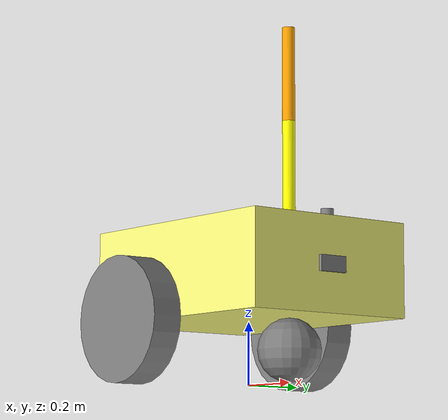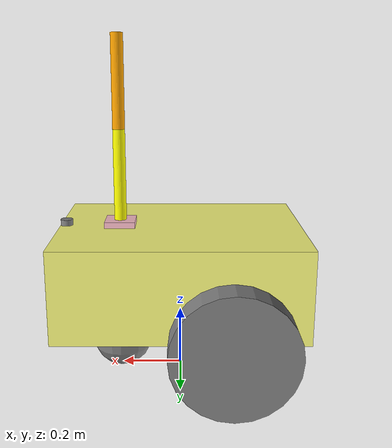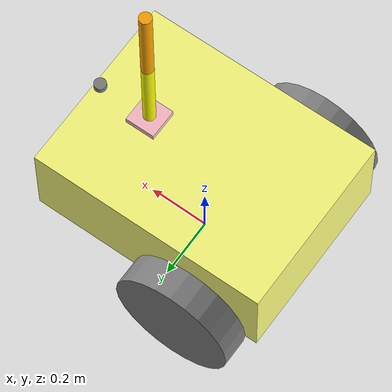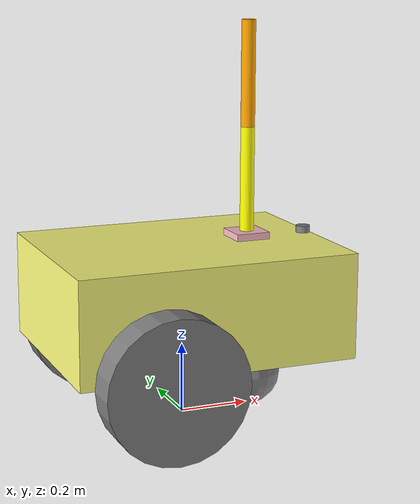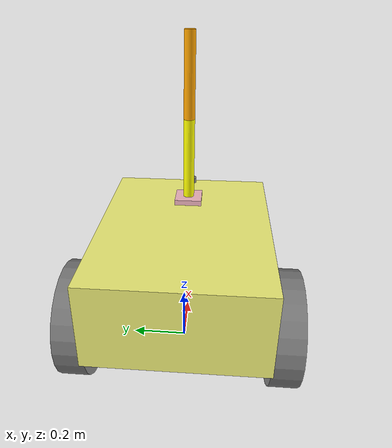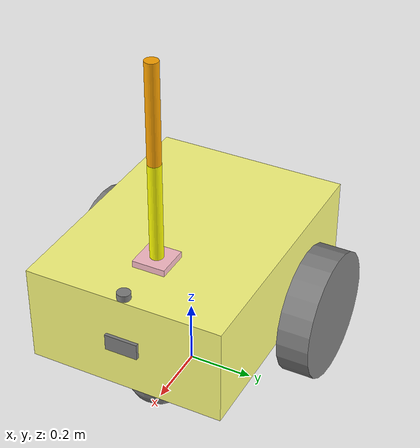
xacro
<?xml version="1.0"?>
<robot name="my_robot" xmlns:xacro="http://www.ros.org/wiki/xacro">

    <xacro:include filename="common_properties.xacro" />

    <xacro:include filename="mobile_base.xacro" />

    <xacro:include filename="arm_mobile_base.xacro" />

    <xacro:include filename="mobile_base_plugin.xacro" />

    <xacro:include filename="camera.xacro" />

    <xacro:include filename="LiDAR.xacro" />

    <joint name="mobile_base_arm_joint" type="fixed">
        <parent link="base_link" />
        <child link="arm_base_link" />
        <origin xyz="${base_length / 4} 0 ${base_height}" rpy="0 0 0" />
    </joint>

    <joint name="laser_joint" type="fixed">
        <parent link="base_link"/>
        <child link="laser_link"/>
        <origin xyz="${base_length / 2} 0 ${base_height}" rpy="0 0 0"/>
    </joint>

</robot>

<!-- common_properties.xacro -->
<robot xmlns:xacro="http://www.ros.org/wiki/xacro">

    <material name="green">
        <color rgba="1 1 0.5 1" />
    </material>

    <material name="grey">
        <color rgba="0.5 0.5 0.5 1" />
    </material>

    <material name="pink">
        <color rgba="1.0 0.753 0.796 1.0" />
    </material>

    <material name="yellow">
        <color rgba="1.0 1.0 0.0 1.0" />
    </material>

    <material name="orange">
        <color rgba="1.0 0.647 0.0 1.0"/>
    </material>

    <xacro:macro name="caster_wheel_inertia" params="m r o_xyz o_rpy">
        <inertial>
            <mass value="${m}" />
            <origin xyz="${o_xyz}" rpy="${o_rpy}" />
            <inertia ixx="${(m * 2 / 5) * (r * r)}" ixy="0" ixz="0"
                      iyy="${(m * 2 / 5) * (r * r)}" iyz="0"
                      izz="${(m * 2 / 5) * (r * r)}" />
        </inertial>
    </xacro:macro>

    <xacro:macro name="cylinder_inertia" params="m r l o_xyz o_rpy">
        <inertial>
            <mass value="${m}" />
            <origin xyz="${o_xyz}" rpy="${o_rpy}" />
            <inertia ixx="${(m/12) * (3 * r * r + l * l)}" ixy="0" ixz="0"
                      iyy="${(m/12) * (3 * r * r + l * l)}" iyz="0"
                      izz="${(m/2) * (r * r)}" />
        </inertial>
    </xacro:macro>

    <xacro:macro name="box_inertia" params="m x y z o_xyz o_rpy">
        <inertial>
            <mass value="${m}" />
            <origin xyz="${o_xyz}" rpy="${o_rpy}" />
            <inertia ixx="${(m/12) * (y * y + z * z)}" ixy="0" ixz="0"
                      iyy="${(m/12) * (x * x + z * z)}" iyz="0"
                      izz="${(m/12) * (y * y + x * x)}" />
        </inertial>
    </xacro:macro>

</robot>

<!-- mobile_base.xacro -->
<robot xmlns:xacro="http://www.ros.org/wiki/xacro">

    <xacro:property name="base_length" value="0.8" />
    <xacro:property name="base_width" value="0.6" />
    <xacro:property name="base_height" value="0.3" />
    <xacro:property name="wheel_length" value="0.1" />
    <xacro:property name="wheel_radius" value="0.2" />

    <link name="base_link">
        <visual>
            <geometry>
                <box size="${base_length} ${base_width} ${base_height}" />
            </geometry>
            <origin xyz="0 0 ${base_height / 2}" rpy="0 0 0" />
            <material name="green" />
        </visual>

        <collision>
            <geometry>
                <box size="$${base_length} ${base_width} ${base_height}" />
            </geometry>
            <origin xyz="0 0 ${base_height / 2}" rpy="0 0 0" />
        </collision>

        <xacro:box_inertia m="5.0" x="${base_length}" y="${base_width}" z="${base_height}"
        o_xyz="0 0 ${base_height / 2}" o_rpy="0 0 0" />
    </link>

    <xacro:macro name="wheel_link" params="prefix">
        <link name="${prefix}_wheel_link">
            <visual>
                <geometry>
                    <cylinder radius="${wheel_radius}" length="${wheel_length}" />
                </geometry>
                <origin xyz="0 0 0" rpy="${pi / 2.0} 0 0" />
                <material name="grey" />
            </visual>

            <collision>
                <geometry>
                    <sphere radius="${wheel_radius}" />
                </geometry>
                <origin xyz="0 0 0" rpy="0 0 0" />
            </collision>

            <xacro:cylinder_inertia m="1.0" r="${wheel_radius}" l="${wheel_length}"
            o_xyz="0 0 0" o_rpy="0 ${pi / 2.0} 0" />
        </link>
    </xacro:macro>

    <xacro:wheel_link prefix="right" />
    <xacro:wheel_link prefix="left" />

    <link name="caster_wheel_link">
        <visual>
            <geometry>
                <sphere radius="${wheel_radius / 2}" />
            </geometry>
            <origin xyz="0 0 0" rpy="0 0 0" />
            <material name="grey" />
        </visual>

        <collision>
            <geometry>
                <sphere radius="${wheel_radius / 2}" />
            </geometry>
            <origin xyz="0 0 0" rpy="0 0 0" />
        </collision>

        <xacro:caster_wheel_inertia m="0.5" r="${wheel_radius / 2}"
        o_xyz="0 0 0" o_rpy="0 0 0" />
    </link>

    <link name="base_footprint" />

    <joint name="base_right_wheel_joint" type="continuous">
        <parent link="base_link" />
        <child link="right_wheel_link" />
        <origin xyz="${-base_length / 5.0} ${base_width / 2 + wheel_length / 2} 0" rpy="0 0 0" />
        <axis xyz="0 1 0" />
    </joint>

    <joint name="base_left_wheel_joint" type="continuous">
        <parent link="base_link" />
        <child link="left_wheel_link" />
        <origin xyz="${-base_length / 5.0} ${-base_width / 2 + -wheel_length / 2} 0" rpy="0 0 0" />
        <axis xyz="0 1 0" />
    </joint>

    <joint name="base_caster_wheel_joint" type="fixed">
        <parent link="base_link" />
        <child link="caster_wheel_link" />
        <origin xyz="${base_length / 4.0} 0 ${-wheel_radius / 2}" rpy="0 0 0" />
    </joint>

    <joint name="base_joint" type="fixed">
        <parent link="base_footprint" />
        <child link="base_link" />
        <origin xyz="0 0 ${wheel_radius}" rpy="0 0 0" />
    </joint>

</robot>

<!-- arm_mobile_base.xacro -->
<robot xmlns:xacro="http://www.ros.org/wiki/xacro">
    <link name="arm_base_link">
        <visual>
            <geometry>
                <box size="0.1 0.1 0.02"/>
            </geometry>
            <origin xyz="0 0 0.01" rpy="0 0 0"/>
            <material name="pink" />
        </visual>

        <collision>
            <geometry>
                <box size="0.1 0.1 0.02"/>
            </geometry>
            <origin xyz="0 0 0.01" rpy="0 0 0"/>
        </collision>

        <xacro:box_inertia m="0.5" x="0.1" y="0.1" z="0.02"
        o_xyz="0 0 0.01" o_rpy="0 0 0" />
    </link>

    <link name="forearm_link">

        <visual>
            <geometry>
                <cylinder radius="0.02" length="0.3"/>
            </geometry>
            <origin xyz="0 0 0.15" rpy="0 0 0"/>
            <material name="yellow"/>
        </visual>

        <collision>
            <geometry>
                <cylinder radius="0.02" length="0.3"/>
            </geometry>
            <origin xyz="0 0 0.15" rpy="0 0 0"/>
        </collision>

        <xacro:cylinder_inertia m="0.3" r="0.02" l="0.3"
        o_xyz="0 0 0.15" o_rpy="0 0 0" />
    </link>

    <link name="hand_link">
        <visual>
            <geometry>
                <cylinder radius="0.02" length="0.3"/>
            </geometry>
            <origin xyz="0 0 0.15" rpy="0 0 0"/>
            <material name="orange"/>
        </visual>

        <collision>
            <geometry>
                <cylinder radius="0.02" length="0.3"/>
            </geometry>
            <origin xyz="0 0 0.15" rpy="0 0 0"/>
        </collision>

        <xacro:cylinder_inertia m="0.3" r="0.02" l="0.3"
        o_xyz="0 0 0.15" o_rpy="0 0 0" />
    </link>

    <joint name="base_to_forearm" type="revolute">
        <parent link="arm_base_link" />
        <child link="forearm_link" />
        <origin xyz="0 0 0.02" rpy="0 0 0"/>

        <axis xyz="1 0 0"/>

        <limit lower="0" upper="${pi/2}" effort="100" velocity="100"/>
        <dynamics
            damping="0.3"
            friction="0.3"/>
    </joint>

    <joint name="forearm_to_hand" type="revolute">
        <parent link="forearm_link" />
        <child link="hand_link" />
        <origin xyz="0 0 0.3" rpy="0 0 0"/>

        <axis xyz="1 0 0"/>

        <limit lower="0" upper="${pi/2}" effort="100" velocity="100"/>

        <dynamics
            damping="0.3"
            friction="0.3"/>
    </joint>

    <gazebo>
        <plugin
            filename="gz_ros2_control-system"
            name="gz_ros2_control::GazeboSimROS2ControlPlugin">

            <parameters>
                /home/yeye/ros2_ws_two/src/arm/config/controllers.yaml
            </parameters>

        </plugin>
    </gazebo>

    <ros2_control name="arm_system" type="system">

        <hardware>
            <plugin>gz_ros2_control/GazeboSimSystem</plugin>
        </hardware>

        <joint name="base_to_forearm">
            <command_interface name="position"/>
            <state_interface name="position"/>
        </joint>

        <joint name="forearm_to_hand">
            <command_interface name="position"/>
            <state_interface name="position"/>
        </joint>

    </ros2_control>

</robot>

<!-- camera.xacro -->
<robot xmlns:xacro="http://www.ros.org/wiki/xacro">

    <xacro:property name="camera_length" value="0.01"/>
    <xacro:property name="camera_width" value="0.1"/>
    <xacro:property name="camera_height" value="0.05"/>

    <link name="camera_link">
     <visual>
        <geometry>
            <box size="${camera_length} ${camera_width} ${camera_height}" />
        </geometry>
        <material name="grey" />
     </visual>
     <collision>
        <geometry>
            <box size="${camera_length} ${camera_width} ${camera_height}" />
        </geometry>
     </collision>
    <xacro:box_inertia m="0.1" x="${camera_length}" y="${camera_width}" z="${camera_height}"
                       o_xyz="0 0 0" o_rpy="0 0 0"/>

    </link>

    <link name="camera_link_optical" />

    <joint name="camera_optical_joint" type="fixed">
        <origin xyz="0 0 0" rpy="${-pi/2} 0 ${-pi/2}"/>
        <parent link="camera_link"/>
        <child link="camera_link_optical"/>
    </joint>

    <joint name="base_camera_joint" type="fixed">
        <parent link="base_link" />
        <child link="camera_link"/>
        <origin xyz="${(base_length + camera_length)/ 2} 0 ${base_height / 2}" rpy="0 0 0"/>
    </joint>

    <gazebo reference="camera_link">
        <sensor name="sensor" type="camera">
            <camera>
                <horizontal_fov>1.047</horizontal_fov>

                <image>
                    <width>640</width>
                    <height>480</height>
                    <format>R8G8B8</format>
                </image>

                <clip>
                    <near>0.1</near>
                    <far>15</far>
                </clip>
                <optical_frame_id>camera_link_optical</optical_frame_id>
                <camera_info_topic>camera/camera_info</camera_info_topic>
            </camera>
            <always_on>1</always_on>
            <update_rate>20</update_rate>
            <visualize>true</visualize>
            <topic>camera/image_raw</topic>
        </sensor>
    </gazebo>
</robot>

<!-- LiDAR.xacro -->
<robot xmlns:xacro="http://www.ros.org/wiki/xacro">

    <xacro:property name="lidar_radius" value="0.02"/>
    <xacro:property name="lidar_length" value="0.02"/>

    <link name="laser_link">
        <visual>
            <geometry>
                <cylinder radius="${lidar_radius}" length="${lidar_length}"/>
            </geometry>
            <material name="grey"/>
            <origin xyz="${-lidar_radius} 0 ${lidar_length / 2}" rpy="0 0 0" />
        </visual>

        <xacro:cylinder_inertia m="0.1" r="${lidar_radius}" l="${lidar_length}"
                    o_xyz="${-lidar_radius} 0 ${lidar_length / 2}" o_rpy="0 0 0"/>
    </link>

    <gazebo reference="laser_link">
        <sensor name="lidar" type="gpu_lidar">
            <visualize>true</visualize>

            <topic>/scan</topic>

            <pose>0 0 0 0 0 0</pose>

            <update_rate>10</update_rate>

                <ray>
                    <scan>
                        <horizontal>
                            <samples>180</samples>
                            <resolution>1</resolution>
                            <min_angle>-1.5708</min_angle>
                            <max_angle>1.5708</max_angle>
                        </horizontal>
                    </scan>

                    <range>
                        <min>0.01</min>
                        <max>10.0</max>
                        <resolution>0.01</resolution>
                    </range>
                </ray>

            <always_on>true</always_on>

        </sensor>
    </gazebo>

    <!-- Prevent this fixed link from automatically merging -->
    <gazebo reference="laser_joint">
        <preserveFixedJoint>true</preserveFixedJoint>
    </gazebo>
</robot>
